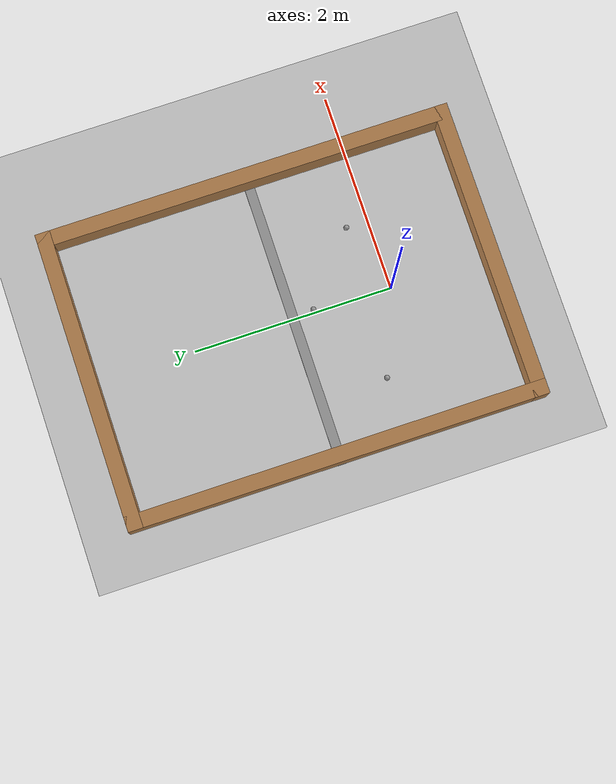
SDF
<sdf version="1.7">
 <world name="default">
  <light name="sun" type="directional">
   <pose>0 0 10 0 -0 0</pose>
   <diffuse>0.8 0.8 0.8 1</diffuse>
   <specular>0.2 0.2 0.2 1</specular>
   <attenuation>
    <range>1000</range>
    <constant>0.9</constant>
    <linear>0.01</linear>
    <quadratic>0.001</quadratic>
   </attenuation>
   <direction>-0.5 0.1 -0.9</direction>
   <spot><inner_angle>0</inner_angle><outer_angle>0</outer_angle><falloff>0</falloff></spot>
  </light>
  <model name="ground_plane">
   <static>1</static>
   <link name="link">
    <collision name="collision">
     <geometry><plane><normal>0 0 1</normal><size>100 100</size></plane></geometry>
     <surface>
      <contact><collide_bitmask>65535</collide_bitmask></contact>
      <friction><ode><mu>100</mu><mu2>50</mu2></ode></friction>
     </surface>
    </collision>
    <visual name="visual">
     <cast_shadows>0</cast_shadows>
     <geometry><plane><normal>0 0 1</normal><size>100 100</size></plane></geometry>
     <material>
      <script><uri>file://media/materials/scripts/gazebo.material</uri><name>Gazebo/Grey</name></script>
     </material>
    </visual>
   </link>
  </model>
  <gravity>0 0 -9.8</gravity>
  <magnetic_field>6e-06 2.3e-05 -4.2e-05</magnetic_field>
  <atmosphere type="adiabatic"/>
  <physics type="ode">
   <max_step_size>0.001</max_step_size>
   <real_time_factor>1</real_time_factor>
   <real_time_update_rate>1000</real_time_update_rate>
  </physics>
  <scene><ambient>0.4 0.4 0.4 1</ambient><background>0.7 0.7 0.7 1</background><shadows>1</shadows></scene>
  <spherical_coordinates>
   <surface_model>EARTH_WGS84</surface_model>
   <latitude_deg>0</latitude_deg>
   <longitude_deg>0</longitude_deg>
   <elevation>0</elevation>
   <heading_deg>0</heading_deg>
  </spherical_coordinates>
  <model name="debi_map">
   <pose>0.023127 1.02165 0 0 -0 0</pose>
   <link name="Wall_23">
    <collision name="Wall_23_Collision">
     <geometry><box><size>4.2 0.15 0.31</size></box></geometry>
     <pose>0 0 0.155 0 -0 0</pose>
    </collision>
    <visual name="Wall_23_Visual">
     <pose>0 0 0.155 0 -0 0</pose>
     <geometry><box><size>4.2 0.15 0.31</size></box></geometry>
     <material>
      <script><uri>file://media/materials/scripts/gazebo.material</uri><name>Gazebo/Wood</name></script>
      <ambient>1 1 1 1</ambient>
     </material>
     <meta><layer>0</layer></meta>
    </visual>
    <pose>-1.425 -0 0 0 -0 1.5708</pose>
   </link>
   <link name="Wall_25">
    <collision name="Wall_25_Collision">
     <geometry><box><size>3 0.15 0.31</size></box></geometry>
     <pose>0 0 0.155 0 -0 0</pose>
    </collision>
    <visual name="Wall_25_Visual">
     <pose>0 0 0.155 0 -0 0</pose>
     <geometry><box><size>3 0.15 0.31</size></box></geometry>
     <material>
      <script><uri>file://media/materials/scripts/gazebo.material</uri><name>Gazebo/Wood</name></script>
      <ambient>1 1 1 1</ambient>
     </material>
     <meta><layer>0</layer></meta>
    </visual>
    <pose>0 -2.025 0 0 -0 0</pose>
   </link>
   <link name="Wall_28">
    <collision name="Wall_28_Collision">
     <geometry><box><size>3 0.15 0.31</size></box></geometry>
     <pose>0 0 0.155 0 -0 0</pose>
    </collision>
    <visual name="Wall_28_Visual">
     <pose>0 0 0.155 0 -0 0</pose>
     <geometry><box><size>3 0.15 0.31</size></box></geometry>
     <material>
      <script><uri>file://media/materials/scripts/gazebo.material</uri><name>Gazebo/Wood</name></script>
      <ambient>1 1 1 1</ambient>
     </material>
     <meta><layer>0</layer></meta>
    </visual>
    <pose>0 2.025 0 0 -0 0</pose>
   </link>
   <link name="Wall_29">
    <collision name="Wall_29_Collision">
     <geometry><box><size>4.2 0.15 0.31</size></box></geometry>
     <pose>0 0 0.155 0 -0 0</pose>
    </collision>
    <visual name="Wall_29_Visual">
     <pose>0 0 0.155 0 -0 0</pose>
     <geometry><box><size>4.2 0.15 0.31</size></box></geometry>
     <material>
      <script><uri>file://media/materials/scripts/gazebo.material</uri><name>Gazebo/Wood</name></script>
      <ambient>1 1 1 1</ambient>
     </material>
     <meta><layer>0</layer></meta>
    </visual>
    <pose>1.425 -0 0 0 -0 -1.5708</pose>
   </link>
   <static>1</static>
  </model>
  <model name="debi_ball">
   <link name="link">
    <inertial>
     <mass>1</mass>
     <inertia><ixx>0.1</ixx><ixy>0</ixy><ixz>0</ixz><iyy>0.1</iyy><iyz>0</iyz><izz>0.1</izz></inertia>
    </inertial>
    <visual name="visual">
     <geometry><sphere><radius>0.0275</radius></sphere></geometry>
     <material>
      <script><name>Gazebo/Grey</name><uri>file://media/materials/scripts/gazebo.material</uri></script>
      <shader type="pixel"><normal_map>__default__</normal_map></shader>
      <ambient>0.3 0.3 0.3 1</ambient>
      <diffuse>0.7 0.7 0.7 1</diffuse>
      <specular>0.01 0.01 0.01 1</specular>
      <emissive>0 0 0 1</emissive>
     </material>
    </visual>
    <collision name="collision">
     <geometry><sphere><radius>0.0275</radius></sphere></geometry>
     <surface>
      <friction>
       <ode><mu>1</mu><mu2>1</mu2><fdir1>0 0 0</fdir1><slip1>0</slip1><slip2>0</slip2></ode>
       <torsional>
        <coefficient>1</coefficient>
        <patch_radius>0</patch_radius>
        <surface_radius>0</surface_radius>
        <use_patch_radius>1</use_patch_radius>
        <ode><slip>0</slip></ode>
       </torsional>
      </friction>
      <bounce><restitution_coefficient>0</restitution_coefficient><threshold>1e+06</threshold></bounce>
      <contact>
       <collide_without_contact>0</collide_without_contact>
       <collide_without_contact_bitmask>1</collide_without_contact_bitmask>
       <collide_bitmask>1</collide_bitmask>
       <ode>
        <soft_cfm>0</soft_cfm>
        <soft_erp>0.2</soft_erp>
        <kp>1e+13</kp>
        <kd>1</kd>
        <max_vel>0.01</max_vel>
        <min_depth>0</min_depth>
       </ode>
       <bullet>
        <split_impulse>1</split_impulse>
        <split_impulse_penetration_threshold>-0.01</split_impulse_penetration_threshold>
        <soft_cfm>0</soft_cfm>
        <soft_erp>0.2</soft_erp>
        <kp>1e+13</kp>
        <kd>1</kd>
       </bullet>
      </contact>
     </surface>
    </collision>
   </link>
   <static>0</static>
   <pose>-0.822383 0.320678 0.027772 0 -0 0</pose>
  </model>
  <model name="debi_ball_clone">
   <link name="link">
    <inertial>
     <mass>1</mass>
     <inertia><ixx>0.1</ixx><ixy>0</ixy><ixz>0</ixz><iyy>0.1</iyy><iyz>0</iyz><izz>0.1</izz></inertia>
    </inertial>
    <visual name="visual">
     <geometry><sphere><radius>0.0275</radius></sphere></geometry>
     <material>
      <script><name>Gazebo/Grey</name><uri>file://media/materials/scripts/gazebo.material</uri></script>
      <shader type="pixel"><normal_map>__default__</normal_map></shader>
      <ambient>0.3 0.3 0.3 1</ambient>
      <diffuse>0.7 0.7 0.7 1</diffuse>
      <specular>0.01 0.01 0.01 1</specular>
      <emissive>0 0 0 1</emissive>
     </material>
    </visual>
    <collision name="collision">
     <geometry><sphere><radius>0.0275</radius></sphere></geometry>
     <surface>
      <friction>
       <ode><mu>1</mu><mu2>1</mu2><fdir1>0 0 0</fdir1><slip1>0</slip1><slip2>0</slip2></ode>
       <torsional>
        <coefficient>1</coefficient>
        <patch_radius>0</patch_radius>
        <surface_radius>0</surface_radius>
        <use_patch_radius>1</use_patch_radius>
        <ode><slip>0</slip></ode>
       </torsional>
      </friction>
      <bounce><restitution_coefficient>0</restitution_coefficient><threshold>1e+06</threshold></bounce>
      <contact>
       <collide_without_contact>0</collide_without_contact>
       <collide_without_contact_bitmask>1</collide_without_contact_bitmask>
       <collide_bitmask>1</collide_bitmask>
       <ode>
        <soft_cfm>0</soft_cfm>
        <soft_erp>0.2</soft_erp>
        <kp>1e+13</kp>
        <kd>1</kd>
        <max_vel>0.01</max_vel>
        <min_depth>0</min_depth>
       </ode>
       <bullet>
        <split_impulse>1</split_impulse>
        <split_impulse_penetration_threshold>-0.01</split_impulse_penetration_threshold>
        <soft_cfm>0</soft_cfm>
        <soft_erp>0.2</soft_erp>
        <kp>1e+13</kp>
        <kd>1</kd>
       </bullet>
      </contact>
     </surface>
    </collision>
   </link>
   <static>0</static>
   <pose>0.036595 0.784076 0.027143 0 -0 0</pose>
  </model>
  <model name="debi_ball_clone_0">
   <link name="link">
    <inertial>
     <mass>1</mass>
     <inertia><ixx>0.1</ixx><ixy>0</ixy><ixz>0</ixz><iyy>0.1</iyy><iyz>0</iyz><izz>0.1</izz></inertia>
    </inertial>
    <visual name="visual">
     <geometry><sphere><radius>0.0275</radius></sphere></geometry>
     <material>
      <script><name>Gazebo/Grey</name><uri>file://media/materials/scripts/gazebo.material</uri></script>
      <shader type="pixel"><normal_map>__default__</normal_map></shader>
      <ambient>0.3 0.3 0.3 1</ambient>
      <diffuse>0.7 0.7 0.7 1</diffuse>
      <specular>0.01 0.01 0.01 1</specular>
      <emissive>0 0 0 1</emissive>
     </material>
    </visual>
    <collision name="collision">
     <geometry><sphere><radius>0.0275</radius></sphere></geometry>
     <surface>
      <friction>
       <ode><mu>1</mu><mu2>1</mu2><fdir1>0 0 0</fdir1><slip1>0</slip1><slip2>0</slip2></ode>
       <torsional>
        <coefficient>1</coefficient>
        <patch_radius>0</patch_radius>
        <surface_radius>0</surface_radius>
        <use_patch_radius>1</use_patch_radius>
        <ode><slip>0</slip></ode>
       </torsional>
      </friction>
      <bounce><restitution_coefficient>0</restitution_coefficient><threshold>1e+06</threshold></bounce>
      <contact>
       <collide_without_contact>0</collide_without_contact>
       <collide_without_contact_bitmask>1</collide_without_contact_bitmask>
       <collide_bitmask>1</collide_bitmask>
       <ode>
        <soft_cfm>0</soft_cfm>
        <soft_erp>0.2</soft_erp>
        <kp>1e+13</kp>
        <kd>1</kd>
        <max_vel>0.01</max_vel>
        <min_depth>0</min_depth>
       </ode>
       <bullet>
        <split_impulse>1</split_impulse>
        <split_impulse_penetration_threshold>-0.01</split_impulse_penetration_threshold>
        <soft_cfm>0</soft_cfm>
        <soft_erp>0.2</soft_erp>
        <kp>1e+13</kp>
        <kd>1</kd>
       </bullet>
      </contact>
     </surface>
    </collision>
   </link>
   <static>0</static>
   <pose>0.705479 0.220907 0.026949 0 -0 0</pose>
  </model>
  <light name="user_point_light_0" type="point">
   <pose>-0.25605 0.965889 1 0 -0 0</pose>
   <diffuse>0.5 0.5 0.5 1</diffuse>
   <specular>0.1 0.1 0.1 1</specular>
   <attenuation>
    <range>20</range>
    <constant>0.5</constant>
    <linear>0.01</linear>
    <quadratic>0.001</quadratic>
   </attenuation>
   <cast_shadows>0</cast_shadows>
   <direction>0 0 -1</direction>
  </light>
  <model name="debi_line">
   <link name="link">
    <inertial>
     <mass>1</mass>
     <inertia>
      <ixx>0.166667</ixx>
      <ixy>0</ixy>
      <ixz>0</ixz>
      <iyy>0.166667</iyy>
      <iyz>0</iyz>
      <izz>0.166667</izz>
     </inertia>
    </inertial>
    <visual name="visual">
     <geometry><box><size>3 0.1 0.01</size></box></geometry>
     <material>
      <script><name>Gazebo/Grey</name><uri>file://media/materials/scripts/gazebo.material</uri></script>
      <shader type="pixel"><normal_map>__default__</normal_map></shader>
      <ambient>0.3 0.3 0.3 1</ambient>
      <diffuse>0.7 0.7 0.7 1</diffuse>
      <specular>0.01 0.01 0.01 1</specular>
      <emissive>0 0 0 1</emissive>
     </material>
    </visual>
    <collision name="collision_3">
     <geometry><box><size>3 0.1 0.01</size></box></geometry>
     <surface>
      <friction>
       <ode><mu>1</mu><mu2>1</mu2><fdir1>0 0 0</fdir1><slip1>0</slip1><slip2>0</slip2></ode>
       <torsional>
        <coefficient>1</coefficient>
        <patch_radius>0</patch_radius>
        <surface_radius>0</surface_radius>
        <use_patch_radius>1</use_patch_radius>
        <ode><slip>0</slip></ode>
       </torsional>
      </friction>
      <bounce><restitution_coefficient>0</restitution_coefficient><threshold>1e+06</threshold></bounce>
      <contact>
       <collide_without_contact>0</collide_without_contact>
       <collide_without_contact_bitmask>1</collide_without_contact_bitmask>
       <collide_bitmask>1</collide_bitmask>
       <ode>
        <soft_cfm>0</soft_cfm>
        <soft_erp>0.2</soft_erp>
        <kp>1e+13</kp>
        <kd>1</kd>
        <max_vel>0.01</max_vel>
        <min_depth>0</min_depth>
       </ode>
       <bullet>
        <split_impulse>1</split_impulse>
        <split_impulse_penetration_threshold>-0.01</split_impulse_penetration_threshold>
        <soft_cfm>0</soft_cfm>
        <soft_erp>0.2</soft_erp>
        <kp>1e+13</kp>
        <kd>1</kd>
       </bullet>
      </contact>
     </surface>
    </collision>
    <collision name="collision_1">
     <geometry><box><size>3 0.1 0.01</size></box></geometry>
     <surface>
      <friction>
       <ode><mu>1</mu><mu2>1</mu2><fdir1>0 0 0</fdir1><slip1>0</slip1><slip2>0</slip2></ode>
       <torsional>
        <coefficient>1</coefficient>
        <patch_radius>0</patch_radius>
        <surface_radius>0</surface_radius>
        <use_patch_radius>1</use_patch_radius>
        <ode><slip>0</slip></ode>
       </torsional>
      </friction>
      <bounce><restitution_coefficient>0</restitution_coefficient><threshold>1e+06</threshold></bounce>
      <contact>
       <collide_without_contact>0</collide_without_contact>
       <collide_without_contact_bitmask>1</collide_without_contact_bitmask>
       <collide_bitmask>1</collide_bitmask>
       <ode>
        <soft_cfm>0</soft_cfm>
        <soft_erp>0.2</soft_erp>
        <kp>1e+13</kp>
        <kd>1</kd>
        <max_vel>0.01</max_vel>
        <min_depth>0</min_depth>
       </ode>
       <bullet>
        <split_impulse>1</split_impulse>
        <split_impulse_penetration_threshold>-0.01</split_impulse_penetration_threshold>
        <soft_cfm>0</soft_cfm>
        <soft_erp>0.2</soft_erp>
        <kp>1e+13</kp>
        <kd>1</kd>
       </bullet>
      </contact>
     </surface>
    </collision>
    <collision name="collision_2">
     <geometry><sphere><radius>1.79769e+308</radius></sphere></geometry>
     <surface>
      <friction>
       <ode><mu>1</mu><mu2>1</mu2><fdir1>0 0 0</fdir1><slip1>0</slip1><slip2>0</slip2></ode>
       <torsional>
        <coefficient>1</coefficient>
        <patch_radius>0</patch_radius>
        <surface_radius>0</surface_radius>
        <use_patch_radius>1</use_patch_radius>
        <ode><slip>0</slip></ode>
       </torsional>
      </friction>
      <bounce><restitution_coefficient>0</restitution_coefficient><threshold>1e+06</threshold></bounce>
      <contact>
       <collide_without_contact>0</collide_without_contact>
       <collide_without_contact_bitmask>1</collide_without_contact_bitmask>
       <collide_bitmask>1</collide_bitmask>
       <ode>
        <soft_cfm>0</soft_cfm>
        <soft_erp>0.2</soft_erp>
        <kp>1e+13</kp>
        <kd>1</kd>
        <max_vel>0.01</max_vel>
        <min_depth>0</min_depth>
       </ode>
       <bullet>
        <split_impulse>1</split_impulse>
        <split_impulse_penetration_threshold>-0.01</split_impulse_penetration_threshold>
        <soft_cfm>0</soft_cfm>
        <soft_erp>0.2</soft_erp>
        <kp>1e+13</kp>
        <kd>1</kd>
       </bullet>
      </contact>
     </surface>
    </collision>
    <collision name="collision">
     <geometry><box><size>3 0.1 0.01</size></box></geometry>
     <surface>
      <friction>
       <ode><mu>1</mu><mu2>1</mu2><fdir1>0 0 0</fdir1><slip1>0</slip1><slip2>0</slip2></ode>
       <torsional>
        <coefficient>1</coefficient>
        <patch_radius>0</patch_radius>
        <surface_radius>0</surface_radius>
        <use_patch_radius>1</use_patch_radius>
        <ode><slip>0</slip></ode>
       </torsional>
      </friction>
      <bounce><restitution_coefficient>0</restitution_coefficient><threshold>1e+06</threshold></bounce>
      <contact>
       <collide_without_contact>0</collide_without_contact>
       <collide_without_contact_bitmask>1</collide_without_contact_bitmask>
       <collide_bitmask>1</collide_bitmask>
       <ode>
        <soft_cfm>0</soft_cfm>
        <soft_erp>0.2</soft_erp>
        <kp>1e+13</kp>
        <kd>1</kd>
        <max_vel>0.01</max_vel>
        <min_depth>0</min_depth>
       </ode>
       <bullet>
        <split_impulse>1</split_impulse>
        <split_impulse_penetration_threshold>-0.01</split_impulse_penetration_threshold>
        <soft_cfm>0</soft_cfm>
        <soft_erp>0.2</soft_erp>
        <kp>1e+13</kp>
        <kd>1</kd>
       </bullet>
      </contact>
     </surface>
    </collision>
   </link>
   <static>0</static>
   <pose>0.02154 0.996279 0.000671 0 -0 0</pose>
  </model>
 </world>
</sdf>
